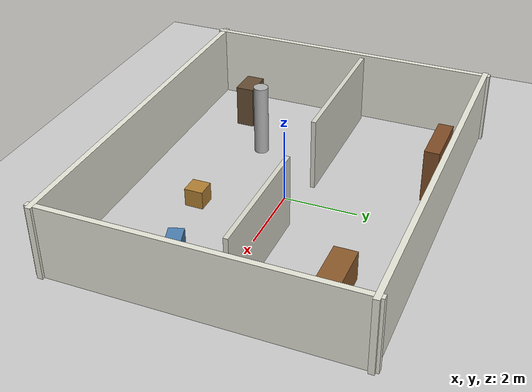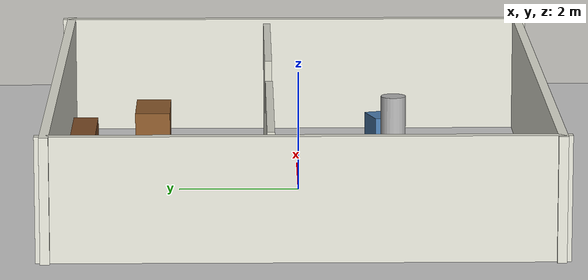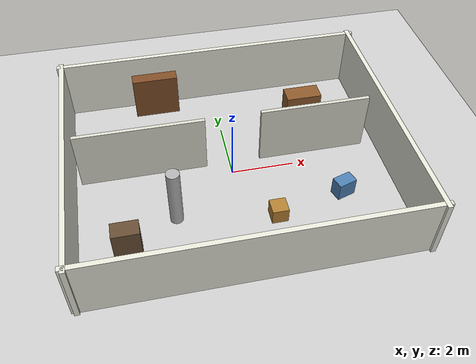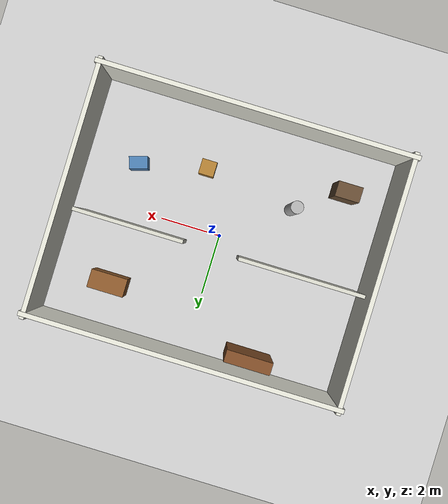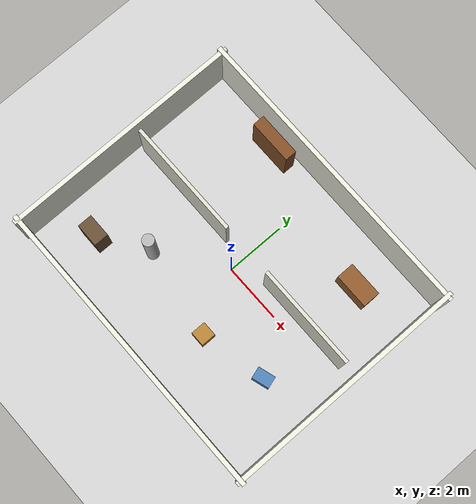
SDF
<?xml version="1.0" ?>
<sdf version="1.8">
  <world name="office">

    <!-- Physics                                                       -->
    <physics name="1ms" type="ignored">
      <max_step_size>0.001</max_step_size>
      <real_time_factor>1.0</real_time_factor>
    </physics>

    <!-- Required world-level system plugins                           -->
    <plugin filename="gz-sim-physics-system"
            name="gz::sim::systems::Physics"/>
    <plugin filename="gz-sim-user-commands-system"
            name="gz::sim::systems::UserCommands"/>
    <plugin filename="gz-sim-scene-broadcaster-system"
            name="gz::sim::systems::SceneBroadcaster"/>
    <plugin filename="gz-sim-sensors-system"
            name="gz::sim::systems::Sensors">
      <render_engine>ogre2</render_engine>
    </plugin>
    <plugin filename="gz-sim-imu-system"
            name="gz::sim::systems::Imu"/>
    <plugin filename="gz-sim-contact-system"
            name="gz::sim::systems::Contact"/>

    <!-- Lighting                                                      -->
    <light type="directional" name="sun">
      <cast_shadows>true</cast_shadows>
      <pose>0 0 10 0 0 0</pose>
      <diffuse>0.8 0.8 0.8 1</diffuse>
      <specular>0.2 0.2 0.2 1</specular>
      <attenuation>
        <range>1000</range>
        <constant>0.9</constant>
        <linear>0.01</linear>
        <quadratic>0.001</quadratic>
      </attenuation>
      <direction>-0.5 0.1 -0.9</direction>
    </light>

    <!-- Ground Plane                                                  -->
    <model name="ground_plane">
      <static>true</static>
      <link name="link">
        <collision name="collision">
          <geometry>
            <plane>
              <normal>0 0 1</normal>
              <size>50 50</size>
            </plane>
          </geometry>
        </collision>
        <visual name="visual">
          <geometry>
            <plane>
              <normal>0 0 1</normal>
              <size>50 50</size>
            </plane>
          </geometry>
          <material>
            <ambient>0.8 0.8 0.8 1</ambient>
            <diffuse>0.8 0.8 0.8 1</diffuse>
            <specular>0.5 0.5 0.5 1</specular>
          </material>
        </visual>
      </link>
    </model>

    <!-- Outer Walls (10 m × 8 m room)                                 -->

    <!-- North wall (along X at Y=+4) -->
    <model name="wall_north">
      <static>true</static>
      <pose>0 4 1 0 0 0</pose>
      <link name="link">
        <collision name="collision">
          <geometry><box><size>10.3 0.15 2</size></box></geometry>
        </collision>
        <visual name="visual">
          <geometry><box><size>10.3 0.15 2</size></box></geometry>
          <material>
            <ambient>0.9 0.9 0.85 1</ambient>
            <diffuse>0.9 0.9 0.85 1</diffuse>
          </material>
        </visual>
      </link>
    </model>

    <!-- South wall -->
    <model name="wall_south">
      <static>true</static>
      <pose>0 -4 1 0 0 0</pose>
      <link name="link">
        <collision name="collision">
          <geometry><box><size>10.3 0.15 2</size></box></geometry>
        </collision>
        <visual name="visual">
          <geometry><box><size>10.3 0.15 2</size></box></geometry>
          <material>
            <ambient>0.9 0.9 0.85 1</ambient>
            <diffuse>0.9 0.9 0.85 1</diffuse>
          </material>
        </visual>
      </link>
    </model>

    <!-- East wall -->
    <model name="wall_east">
      <static>true</static>
      <pose>5 0 1 0 0 0</pose>
      <link name="link">
        <collision name="collision">
          <geometry><box><size>0.15 8.3 2</size></box></geometry>
        </collision>
        <visual name="visual">
          <geometry><box><size>0.15 8.3 2</size></box></geometry>
          <material>
            <ambient>0.9 0.9 0.85 1</ambient>
            <diffuse>0.9 0.9 0.85 1</diffuse>
          </material>
        </visual>
      </link>
    </model>

    <!-- West wall -->
    <model name="wall_west">
      <static>true</static>
      <pose>-5 0 1 0 0 0</pose>
      <link name="link">
        <collision name="collision">
          <geometry><box><size>0.15 8.3 2</size></box></geometry>
        </collision>
        <visual name="visual">
          <geometry><box><size>0.15 8.3 2</size></box></geometry>
          <material>
            <ambient>0.9 0.9 0.85 1</ambient>
            <diffuse>0.9 0.9 0.85 1</diffuse>
          </material>
        </visual>
      </link>
    </model>

    <!-- Interior partition (creates doorway gap of ~1.5 m)            -->
    <model name="partition_left">
      <static>true</static>
      <pose>-2.75 0.5 1 0 0 0</pose>
      <link name="link">
        <collision name="collision">
          <geometry><box><size>4.0 0.12 2</size></box></geometry>
        </collision>
        <visual name="visual">
          <geometry><box><size>4.0 0.12 2</size></box></geometry>
          <material>
            <ambient>0.85 0.85 0.8 1</ambient>
            <diffuse>0.85 0.85 0.8 1</diffuse>
          </material>
        </visual>
      </link>
    </model>

    <model name="partition_right">
      <static>true</static>
      <pose>2.75 0.5 1 0 0 0</pose>
      <link name="link">
        <collision name="collision">
          <geometry><box><size>3.5 0.12 2</size></box></geometry>
        </collision>
        <visual name="visual">
          <geometry><box><size>3.5 0.12 2</size></box></geometry>
          <material>
            <ambient>0.85 0.85 0.8 1</ambient>
            <diffuse>0.85 0.85 0.8 1</diffuse>
          </material>
        </visual>
      </link>
    </model>

    <!-- Obstacles                                                     -->

    <!-- Desk -->
    <model name="desk">
      <static>true</static>
      <pose>3.0 2.5 0.4 0 0 0</pose>
      <link name="link">
        <collision name="collision">
          <geometry><box><size>1.2 0.6 0.8</size></box></geometry>
        </collision>
        <visual name="visual">
          <geometry><box><size>1.2 0.6 0.8</size></box></geometry>
          <material>
            <ambient>0.55 0.35 0.17 1</ambient>
            <diffuse>0.55 0.35 0.17 1</diffuse>
          </material>
        </visual>
      </link>
    </model>

    <!-- Cabinet -->
    <model name="cabinet">
      <static>true</static>
      <pose>-3.5 -2.5 0.6 0 0 0</pose>
      <link name="link">
        <collision name="collision">
          <geometry><box><size>0.8 0.5 1.2</size></box></geometry>
        </collision>
        <visual name="visual">
          <geometry><box><size>0.8 0.5 1.2</size></box></geometry>
          <material>
            <ambient>0.4 0.3 0.2 1</ambient>
            <diffuse>0.4 0.3 0.2 1</diffuse>
          </material>
        </visual>
      </link>
    </model>

    <!-- Box 1 -->
    <model name="box1">
      <static>true</static>
      <pose>1.0 -2.0 0.25 0 0 0</pose>
      <link name="link">
        <collision name="collision">
          <geometry><box><size>0.5 0.5 0.5</size></box></geometry>
        </collision>
        <visual name="visual">
          <geometry><box><size>0.5 0.5 0.5</size></box></geometry>
          <material>
            <ambient>0.7 0.5 0.2 1</ambient>
            <diffuse>0.7 0.5 0.2 1</diffuse>
          </material>
        </visual>
      </link>
    </model>

    <!-- Box 2 (rotated) -->
    <model name="box2">
      <static>true</static>
      <pose>3.2 -1.5 0.3 0 0 0.3</pose>
      <link name="link">
        <collision name="collision">
          <geometry><box><size>0.6 0.4 0.6</size></box></geometry>
        </collision>
        <visual name="visual">
          <geometry><box><size>0.6 0.4 0.6</size></box></geometry>
          <material>
            <ambient>0.3 0.5 0.7 1</ambient>
            <diffuse>0.3 0.5 0.7 1</diffuse>
          </material>
        </visual>
      </link>
    </model>

    <!-- Cylindrical column -->
    <model name="column">
      <static>true</static>
      <pose>-2.0 -1.5 1 0 0 0</pose>
      <link name="link">
        <collision name="collision">
          <geometry><cylinder><radius>0.2</radius><length>2</length></cylinder></geometry>
        </collision>
        <visual name="visual">
          <geometry><cylinder><radius>0.2</radius><length>2</length></cylinder></geometry>
          <material>
            <ambient>0.7 0.7 0.7 1</ambient>
            <diffuse>0.7 0.7 0.7 1</diffuse>
          </material>
        </visual>
      </link>
    </model>

    <!-- Bookshelf along north wall -->
    <model name="bookshelf">
      <static>true</static>
      <pose>-2.0 3.5 0.75 0 0 0</pose>
      <link name="link">
        <collision name="collision">
          <geometry><box><size>1.5 0.4 1.5</size></box></geometry>
        </collision>
        <visual name="visual">
          <geometry><box><size>1.5 0.4 1.5</size></box></geometry>
          <material>
            <ambient>0.5 0.3 0.15 1</ambient>
            <diffuse>0.5 0.3 0.15 1</diffuse>
          </material>
        </visual>
      </link>
    </model>

  </world>
</sdf>
